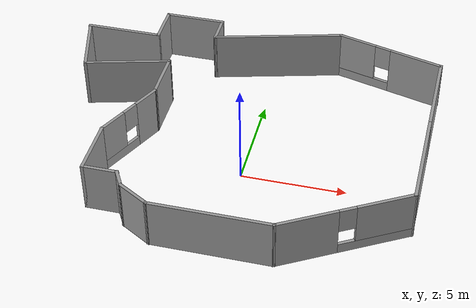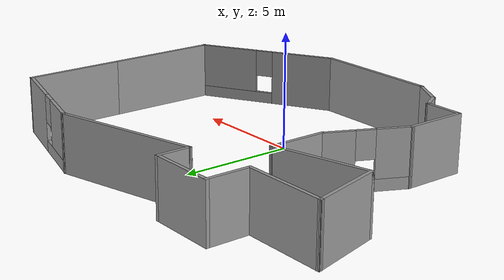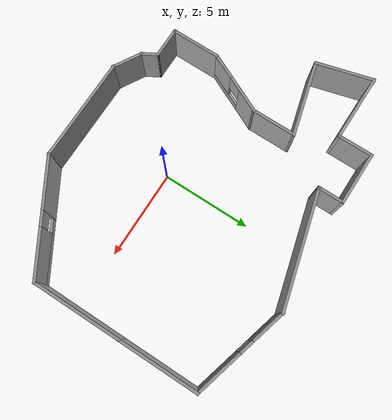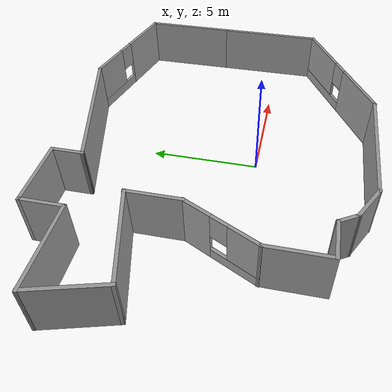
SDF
<?xml version='1.0'?>
<sdf version='1.7'>
  <model name='walls'>
    <pose>-0.630466 1.77842 0 0 -0 0</pose>
    <link name='Wall_10'>
      <pose>6.28652 6.1928 0 0 -0 2.87979</pose>
      <visual name='Wall_10_Visual_0'>
        <pose>-1.39179 0 1.25 0 -0 0</pose>
        <geometry>
          <box>
            <size>2.71642 0.15 2.5</size>
          </box>
        </geometry>
        <material>
          <script>
            <uri>file://media/materials/scripts/gazebo.material</uri>
            <name>Gazebo/Grey</name>
          </script>
          <ambient>1 1 1 1</ambient>
        </material>
        <meta>
          <layer>0</layer>
        </meta>
      </visual>
      <collision name='Wall_10_Collision_0'>
        <geometry>
          <box>
            <size>2.71642 0.15 2.5</size>
          </box>
        </geometry>
        <pose>-1.39179 0 1.25 0 -0 0</pose>
      </collision>
      <visual name='Wall_10_Visual_1'>
        <pose>1.35821 0 0.25 0 -0 0</pose>
        <geometry>
          <box>
            <size>2.78358 0.15 0.5</size>
          </box>
        </geometry>
        <material>
          <script>
            <uri>file://media/materials/scripts/gazebo.material</uri>
            <name>Gazebo/Grey</name>
          </script>
          <ambient>1 1 1 1</ambient>
        </material>
        <meta>
          <layer>0</layer>
        </meta>
      </visual>
      <collision name='Wall_10_Collision_1'>
        <geometry>
          <box>
            <size>2.78358 0.15 0.5</size>
          </box>
        </geometry>
        <pose>1.35821 0 0.25 0 -0 0</pose>
      </collision>
      <visual name='Wall_10_Visual_2'>
        <pose>1.75821 0 1.5 0 -0 0</pose>
        <geometry>
          <box>
            <size>1.98358 0.15 2</size>
          </box>
        </geometry>
        <material>
          <script>
            <uri>file://media/materials/scripts/gazebo.material</uri>
            <name>Gazebo/Grey</name>
          </script>
          <ambient>1 1 1 1</ambient>
        </material>
        <meta>
          <layer>0</layer>
        </meta>
      </visual>
      <collision name='Wall_10_Collision_2'>
        <geometry>
          <box>
            <size>1.98358 0.15 2</size>
          </box>
        </geometry>
        <pose>1.75821 0 1.5 0 -0 0</pose>
      </collision>
      <visual name='Wall_10_Visual_3'>
        <pose>0.366423 0 1.9 0 -0 0</pose>
        <geometry>
          <box>
            <size>0.8 0.15 1.2</size>
          </box>
        </geometry>
        <material>
          <script>
            <uri>file://media/materials/scripts/gazebo.material</uri>
            <name>Gazebo/Grey</name>
          </script>
          <ambient>1 1 1 1</ambient>
        </material>
        <meta>
          <layer>0</layer>
        </meta>
      </visual>
      <collision name='Wall_10_Collision_3'>
        <geometry>
          <box>
            <size>0.8 0.15 1.2</size>
          </box>
        </geometry>
        <pose>0.366423 0 1.9 0 -0 0</pose>
      </collision>
    </link>
    <link name='Wall_11'>
      <collision name='Wall_11_Collision'>
        <geometry>
          <box>
            <size>6.5 0.15 2.5</size>
          </box>
        </geometry>
        <pose>0 0 1.25 0 -0 0</pose>
      </collision>
      <visual name='Wall_11_Visual'>
        <pose>0 0 1.25 0 -0 0</pose>
        <geometry>
          <box>
            <size>6.5 0.15 2.5</size>
          </box>
        </geometry>
        <material>
          <script>
            <uri>file://media/materials/scripts/gazebo.material</uri>
            <name>Gazebo/Grey</name>
          </script>
          <ambient>1 1 1 1</ambient>
        </material>
        <meta>
          <layer>0</layer>
        </meta>
      </visual>
      <pose>0.635851 6.06339 0 0 -0 -2.87979</pose>
    </link>
    <link name='Wall_12'>
      <collision name='Wall_12_Collision'>
        <geometry>
          <box>
            <size>1.5 0.15 2.5</size>
          </box>
        </geometry>
        <pose>0 0 1.25 0 -0 0</pose>
      </collision>
      <visual name='Wall_12_Visual'>
        <pose>0 0 1.25 0 -0 0</pose>
        <geometry>
          <box>
            <size>1.5 0.15 2.5</size>
          </box>
        </geometry>
        <material>
          <script>
            <uri>file://media/materials/scripts/gazebo.material</uri>
            <name>Gazebo/Grey</name>
          </script>
          <ambient>1 1 1 1</ambient>
        </material>
        <meta>
          <layer>0</layer>
        </meta>
      </visual>
      <pose>-2.43096 5.91664 0 0 -0 1.5708</pose>
    </link>
    <link name='Wall_13'>
      <collision name='Wall_13_Collision'>
        <geometry>
          <box>
            <size>3 0.15 2.5</size>
          </box>
        </geometry>
        <pose>0 0 1.25 0 -0 0</pose>
      </collision>
      <visual name='Wall_13_Visual'>
        <pose>0 0 1.25 0 -0 0</pose>
        <geometry>
          <box>
            <size>3 0.15 2.5</size>
          </box>
        </geometry>
        <material>
          <script>
            <uri>file://media/materials/scripts/gazebo.material</uri>
            <name>Gazebo/Grey</name>
          </script>
          <ambient>1 1 1 1</ambient>
        </material>
        <meta>
          <layer>0</layer>
        </meta>
      </visual>
      <pose>-3.85596 6.59164 0 0 -0 3.14159</pose>
    </link>
    <link name='Wall_14'>
      <collision name='Wall_14_Collision'>
        <geometry>
          <box>
            <size>2 0.15 2.5</size>
          </box>
        </geometry>
        <pose>0 0 1.25 0 -0 0</pose>
      </collision>
      <visual name='Wall_14_Visual'>
        <pose>0 0 1.25 0 -0 0</pose>
        <geometry>
          <box>
            <size>2 0.15 2.5</size>
          </box>
        </geometry>
        <material>
          <script>
            <uri>file://media/materials/scripts/gazebo.material</uri>
            <name>Gazebo/Grey</name>
          </script>
          <ambient>1 1 1 1</ambient>
        </material>
        <meta>
          <layer>0</layer>
        </meta>
      </visual>
      <pose>-5.28096 5.66664 0 0 -0 -1.5708</pose>
    </link>
    <link name='Wall_15'>
      <collision name='Wall_15_Collision'>
        <geometry>
          <box>
            <size>3.75 0.15 2.5</size>
          </box>
        </geometry>
        <pose>0 0 1.25 0 -0 0</pose>
      </collision>
      <visual name='Wall_15_Visual'>
        <pose>0 0 1.25 0 -0 0</pose>
        <geometry>
          <box>
            <size>3.75 0.15 2.5</size>
          </box>
        </geometry>
        <material>
          <script>
            <uri>file://media/materials/scripts/gazebo.material</uri>
            <name>Gazebo/Grey</name>
          </script>
          <ambient>1 1 1 1</ambient>
        </material>
        <meta>
          <layer>0</layer>
        </meta>
      </visual>
      <pose>-7.08096 4.74164 0 0 -0 3.14159</pose>
    </link>
    <link name='Wall_16'>
      <collision name='Wall_16_Collision'>
        <geometry>
          <box>
            <size>3.25 0.15 2.5</size>
          </box>
        </geometry>
        <pose>0 0 1.25 0 -0 0</pose>
      </collision>
      <visual name='Wall_16_Visual'>
        <pose>0 0 1.25 0 -0 0</pose>
        <geometry>
          <box>
            <size>3.25 0.15 2.5</size>
          </box>
        </geometry>
        <material>
          <script>
            <uri>file://media/materials/scripts/gazebo.material</uri>
            <name>Gazebo/Grey</name>
          </script>
          <ambient>1 1 1 1</ambient>
        </material>
        <meta>
          <layer>0</layer>
        </meta>
      </visual>
      <pose>-8.47979 3.24445 0 0 -0 -1.309</pose>
    </link>
    <link name='Wall_17'>
      <collision name='Wall_17_Collision'>
        <geometry>
          <box>
            <size>4.25 0.15 2.5</size>
          </box>
        </geometry>
        <pose>0 0 1.25 0 -0 0</pose>
      </collision>
      <visual name='Wall_17_Visual'>
        <pose>0 0 1.25 0 -0 0</pose>
        <geometry>
          <box>
            <size>4.25 0.15 2.5</size>
          </box>
        </geometry>
        <material>
          <script>
            <uri>file://media/materials/scripts/gazebo.material</uri>
            <name>Gazebo/Grey</name>
          </script>
          <ambient>1 1 1 1</ambient>
        </material>
        <meta>
          <layer>0</layer>
        </meta>
      </visual>
      <pose>-6.09848 2.27785 0 0 -0 0.261799</pose>
    </link>
    <link name='Wall_18'>
      <collision name='Wall_18_Collision'>
        <geometry>
          <box>
            <size>2.5 0.15 2.5</size>
          </box>
        </geometry>
        <pose>0 0 1.25 0 -0 0</pose>
      </collision>
      <visual name='Wall_18_Visual'>
        <pose>0 0 1.25 0 -0 0</pose>
        <geometry>
          <box>
            <size>2.5 0.15 2.5</size>
          </box>
        </geometry>
        <material>
          <script>
            <uri>file://media/materials/scripts/gazebo.material</uri>
            <name>Gazebo/Grey</name>
          </script>
          <ambient>1 1 1 1</ambient>
        </material>
        <meta>
          <layer>0</layer>
        </meta>
      </visual>
      <pose>-4.11833 1.63343 0 0 -0 -1.5708</pose>
    </link>
    <link name='Wall_19'>
      <pose>-4.87893 -1.14 0 0 -0 -2.01493</pose>
      <visual name='Wall_19_Visual_0'>
        <pose>-1.14853 0 1.25 0 -0 0</pose>
        <geometry>
          <box>
            <size>1.39327 0.15 2.5</size>
          </box>
        </geometry>
        <material>
          <script>
            <uri>file://media/materials/scripts/gazebo.material</uri>
            <name>Gazebo/Grey</name>
          </script>
          <ambient>1 1 1 1</ambient>
        </material>
        <meta>
          <layer>0</layer>
        </meta>
      </visual>
      <collision name='Wall_19_Collision_0'>
        <geometry>
          <box>
            <size>1.39327 0.15 2.5</size>
          </box>
        </geometry>
        <pose>-1.14853 0 1.25 0 -0 0</pose>
      </collision>
      <visual name='Wall_19_Visual_1'>
        <pose>0.696637 0 0.25 0 -0 0</pose>
        <geometry>
          <box>
            <size>2.29705 0.15 0.5</size>
          </box>
        </geometry>
        <material>
          <script>
            <uri>file://media/materials/scripts/gazebo.material</uri>
            <name>Gazebo/Grey</name>
          </script>
          <ambient>1 1 1 1</ambient>
        </material>
        <meta>
          <layer>0</layer>
        </meta>
      </visual>
      <collision name='Wall_19_Collision_1'>
        <geometry>
          <box>
            <size>2.29705 0.15 0.5</size>
          </box>
        </geometry>
        <pose>0.696637 0 0.25 0 -0 0</pose>
      </collision>
      <visual name='Wall_19_Visual_2'>
        <pose>1.09664 0 1.5 0 -0 0</pose>
        <geometry>
          <box>
            <size>1.49705 0.15 2</size>
          </box>
        </geometry>
        <material>
          <script>
            <uri>file://media/materials/scripts/gazebo.material</uri>
            <name>Gazebo/Grey</name>
          </script>
          <ambient>1 1 1 1</ambient>
        </material>
        <meta>
          <layer>0</layer>
        </meta>
      </visual>
      <collision name='Wall_19_Collision_2'>
        <geometry>
          <box>
            <size>1.49705 0.15 2</size>
          </box>
        </geometry>
        <pose>1.09664 0 1.5 0 -0 0</pose>
      </collision>
      <visual name='Wall_19_Visual_3'>
        <pose>-0.051889 0 1.9 0 -0 0</pose>
        <geometry>
          <box>
            <size>0.8 0.15 1.2</size>
          </box>
        </geometry>
        <material>
          <script>
            <uri>file://media/materials/scripts/gazebo.material</uri>
            <name>Gazebo/Grey</name>
          </script>
          <ambient>1 1 1 1</ambient>
        </material>
        <meta>
          <layer>0</layer>
        </meta>
      </visual>
      <collision name='Wall_19_Collision_3'>
        <geometry>
          <box>
            <size>0.8 0.15 1.2</size>
          </box>
        </geometry>
        <pose>-0.051889 0 1.9 0 -0 0</pose>
      </collision>
    </link>
    <link name='Wall_2'>
      <collision name='Wall_2_Collision'>
        <geometry>
          <box>
            <size>2.75 0.15 2.5</size>
          </box>
        </geometry>
        <pose>0 0 1.25 0 -0 0</pose>
      </collision>
      <visual name='Wall_2_Visual'>
        <pose>0 0 1.25 0 -0 0</pose>
        <geometry>
          <box>
            <size>2.75 0.15 2.5</size>
          </box>
        </geometry>
        <material>
          <script>
            <uri>file://media/materials/scripts/gazebo.material</uri>
            <name>Gazebo/Grey</name>
          </script>
          <ambient>1 1 1 1</ambient>
        </material>
        <meta>
          <layer>0</layer>
        </meta>
      </visual>
      <pose>-5.63953 -4.03842 0 0 -0 -1.5708</pose>
    </link>
    <link name='Wall_3'>
      <collision name='Wall_3_Collision'>
        <geometry>
          <box>
            <size>1.75 0.15 2.5</size>
          </box>
        </geometry>
        <pose>0 0 1.25 0 -0 0</pose>
      </collision>
      <visual name='Wall_3_Visual'>
        <pose>0 0 1.25 0 -0 0</pose>
        <geometry>
          <box>
            <size>1.75 0.15 2.5</size>
          </box>
        </geometry>
        <material>
          <script>
            <uri>file://media/materials/scripts/gazebo.material</uri>
            <name>Gazebo/Grey</name>
          </script>
          <ambient>1 1 1 1</ambient>
        </material>
        <meta>
          <layer>0</layer>
        </meta>
      </visual>
      <pose>-4.83953 -5.33842 0 0 -0 0</pose>
    </link>
    <link name='Wall_4'>
      <collision name='Wall_4_Collision'>
        <geometry>
          <box>
            <size>1 0.15 2.5</size>
          </box>
        </geometry>
        <pose>0 0 1.25 0 -0 0</pose>
      </collision>
      <visual name='Wall_4_Visual'>
        <pose>0 0 1.25 0 -0 0</pose>
        <geometry>
          <box>
            <size>1 0.15 2.5</size>
          </box>
        </geometry>
        <material>
          <script>
            <uri>file://media/materials/scripts/gazebo.material</uri>
            <name>Gazebo/Grey</name>
          </script>
          <ambient>1 1 1 1</ambient>
        </material>
        <meta>
          <layer>0</layer>
        </meta>
      </visual>
      <pose>-3.82703 -5.70648 0 0 -0 -1.0472</pose>
    </link>
    <link name='Wall_5'>
      <collision name='Wall_5_Collision'>
        <geometry>
          <box>
            <size>1.75 0.15 2.5</size>
          </box>
        </geometry>
        <pose>0 0 1.25 0 -0 0</pose>
      </collision>
      <visual name='Wall_5_Visual'>
        <pose>0 0 1.25 0 -0 0</pose>
        <geometry>
          <box>
            <size>1.75 0.15 2.5</size>
          </box>
        </geometry>
        <material>
          <script>
            <uri>file://media/materials/scripts/gazebo.material</uri>
            <name>Gazebo/Grey</name>
          </script>
          <ambient>1 1 1 1</ambient>
        </material>
        <meta>
          <layer>0</layer>
        </meta>
      </visual>
      <pose>-2.92171 -6.47454 0 0 -0 -0.523599</pose>
    </link>
    <link name='Wall_6'>
      <collision name='Wall_6_Collision'>
        <geometry>
          <box>
            <size>5.75 0.15 2.5</size>
          </box>
        </geometry>
        <pose>0 0 1.25 0 -0 0</pose>
      </collision>
      <visual name='Wall_6_Visual'>
        <pose>0 0 1.25 0 -0 0</pose>
        <geometry>
          <box>
            <size>5.75 0.15 2.5</size>
          </box>
        </geometry>
        <material>
          <script>
            <uri>file://media/materials/scripts/gazebo.material</uri>
            <name>Gazebo/Grey</name>
          </script>
          <ambient>1 1 1 1</ambient>
        </material>
        <meta>
          <layer>0</layer>
        </meta>
      </visual>
      <pose>0.571107 -6.87454 0 0 -0 0</pose>
    </link>
    <link name='Wall_7'>
      <pose>6.12074 -5.28704 0 0 -0 0.523599</pose>
      <visual name='Wall_7_Visual_0'>
        <pose>-1.78 0 1.25 0 -0 0</pose>
        <geometry>
          <box>
            <size>2.94001 0.15 2.5</size>
          </box>
        </geometry>
        <material>
          <script>
            <uri>file://media/materials/scripts/gazebo.material</uri>
            <name>Gazebo/Grey</name>
          </script>
          <ambient>1 1 1 1</ambient>
        </material>
        <meta>
          <layer>0</layer>
        </meta>
      </visual>
      <collision name='Wall_7_Collision_0'>
        <geometry>
          <box>
            <size>2.94001 0.15 2.5</size>
          </box>
        </geometry>
        <pose>-1.78 0 1.25 0 -0 0</pose>
      </collision>
      <visual name='Wall_7_Visual_1'>
        <pose>1.47 0 0.25 0 -0 0</pose>
        <geometry>
          <box>
            <size>3.55999 0.15 0.5</size>
          </box>
        </geometry>
        <material>
          <script>
            <uri>file://media/materials/scripts/gazebo.material</uri>
            <name>Gazebo/Grey</name>
          </script>
          <ambient>1 1 1 1</ambient>
        </material>
        <meta>
          <layer>0</layer>
        </meta>
      </visual>
      <collision name='Wall_7_Collision_1'>
        <geometry>
          <box>
            <size>3.55999 0.15 0.5</size>
          </box>
        </geometry>
        <pose>1.47 0 0.25 0 -0 0</pose>
      </collision>
      <visual name='Wall_7_Visual_2'>
        <pose>1.87 0 1.5 0 -0 0</pose>
        <geometry>
          <box>
            <size>2.75999 0.15 2</size>
          </box>
        </geometry>
        <material>
          <script>
            <uri>file://media/materials/scripts/gazebo.material</uri>
            <name>Gazebo/Grey</name>
          </script>
          <ambient>1 1 1 1</ambient>
        </material>
        <meta>
          <layer>0</layer>
        </meta>
      </visual>
      <collision name='Wall_7_Collision_2'>
        <geometry>
          <box>
            <size>2.75999 0.15 2</size>
          </box>
        </geometry>
        <pose>1.87 0 1.5 0 -0 0</pose>
      </collision>
      <visual name='Wall_7_Visual_3'>
        <pose>0.090006 0 1.9 0 -0 0</pose>
        <geometry>
          <box>
            <size>0.8 0.15 1.2</size>
          </box>
        </geometry>
        <material>
          <script>
            <uri>file://media/materials/scripts/gazebo.material</uri>
            <name>Gazebo/Grey</name>
          </script>
          <ambient>1 1 1 1</ambient>
        </material>
        <meta>
          <layer>0</layer>
        </meta>
      </visual>
      <collision name='Wall_7_Collision_3'>
        <geometry>
          <box>
            <size>0.8 0.15 1.2</size>
          </box>
        </geometry>
        <pose>0.090006 0 1.9 0 -0 0</pose>
      </collision>
    </link>
    <link name='Wall_8'>
      <collision name='Wall_8_Collision'>
        <geometry>
          <box>
            <size>5 0.15 2.5</size>
          </box>
        </geometry>
        <pose>0 0 1.25 0 -0 0</pose>
      </collision>
      <visual name='Wall_8_Visual'>
        <pose>0 0 1.25 0 -0 0</pose>
        <geometry>
          <box>
            <size>5 0.15 2.5</size>
          </box>
        </geometry>
        <material>
          <script>
            <uri>file://media/materials/scripts/gazebo.material</uri>
            <name>Gazebo/Grey</name>
          </script>
          <ambient>1 1 1 1</ambient>
        </material>
        <meta>
          <layer>0</layer>
        </meta>
      </visual>
      <pose>8.87037 -1.27454 0 0 -0 1.5708</pose>
    </link>
    <link name='Wall_9'>
      <collision name='Wall_9_Collision'>
        <geometry>
          <box>
            <size>4.5 0.15 2.5</size>
          </box>
        </geometry>
        <pose>0 0 1.25 0 -0 0</pose>
      </collision>
      <visual name='Wall_9_Visual'>
        <pose>0 0 1.25 0 -0 0</pose>
        <geometry>
          <box>
            <size>4.5 0.15 2.5</size>
          </box>
        </geometry>
        <material>
          <script>
            <uri>file://media/materials/scripts/gazebo.material</uri>
            <name>Gazebo/Grey</name>
          </script>
          <ambient>1 1 1 1</ambient>
        </material>
        <meta>
          <layer>0</layer>
        </meta>
      </visual>
      <pose>8.87037 3.32546 0 0 -0 1.5708</pose>
    </link>
    <static>1</static>
  </model>
</sdf>
